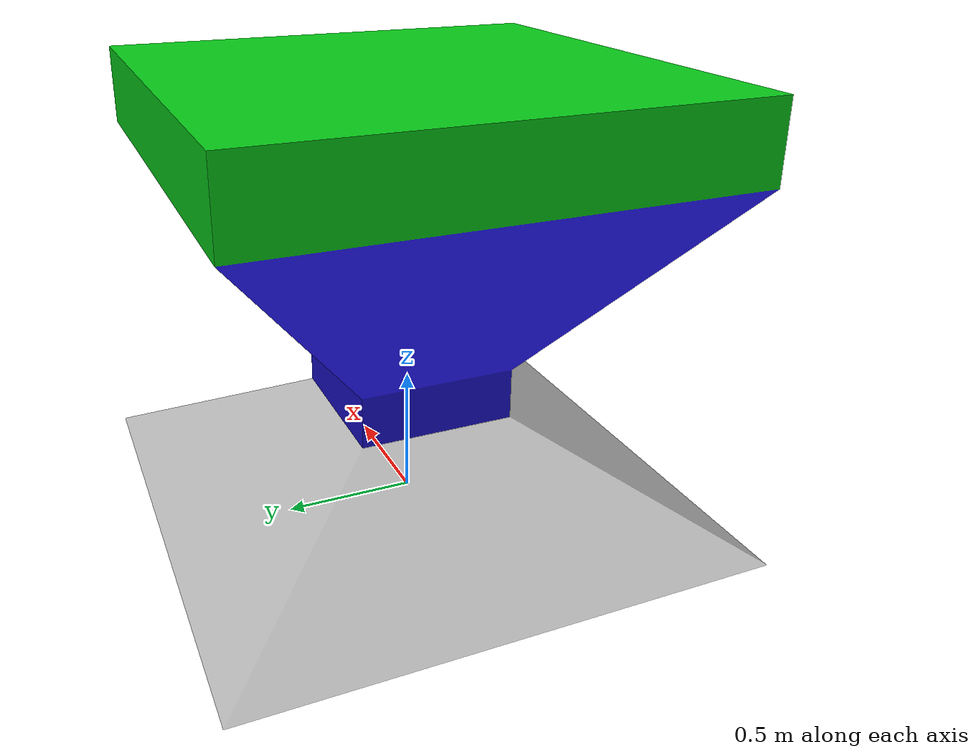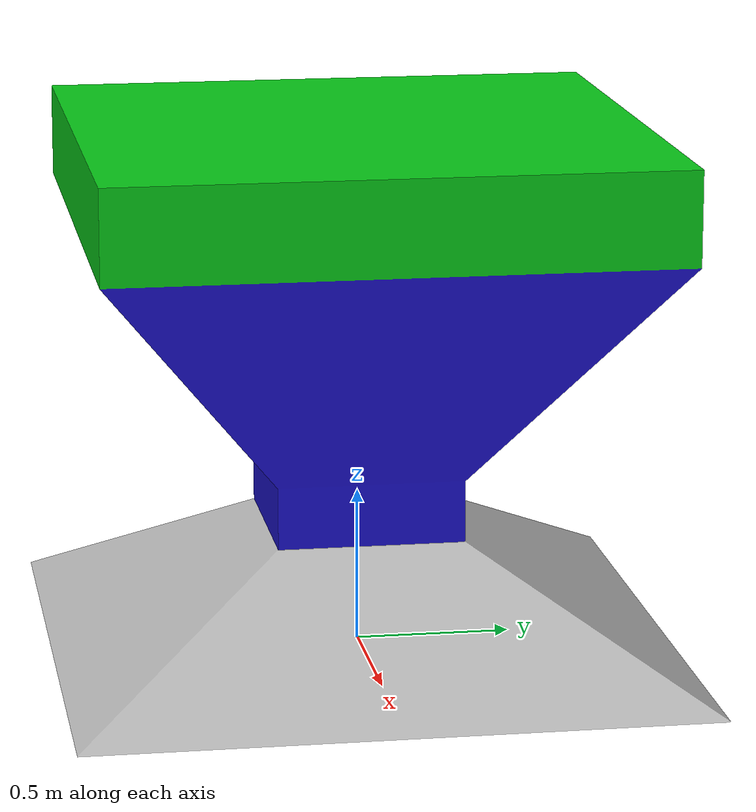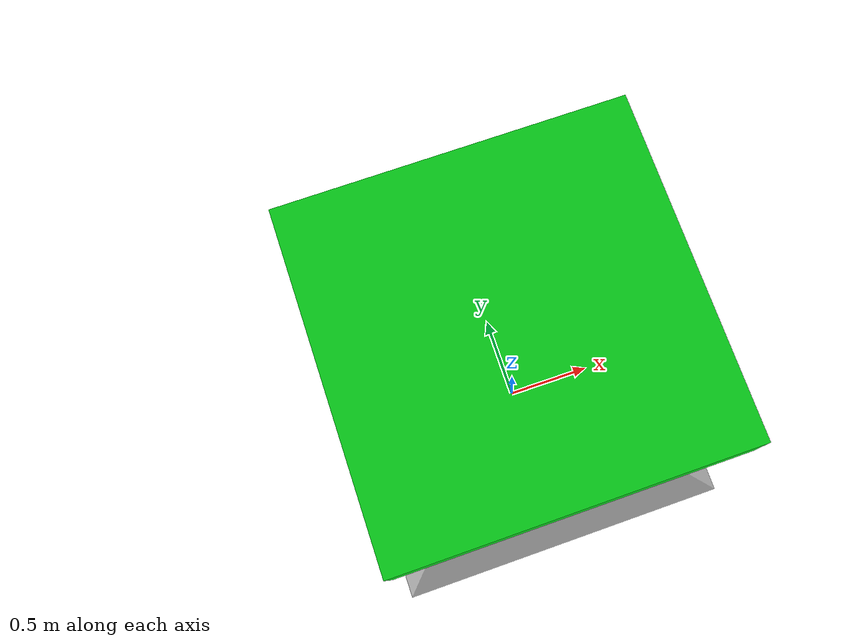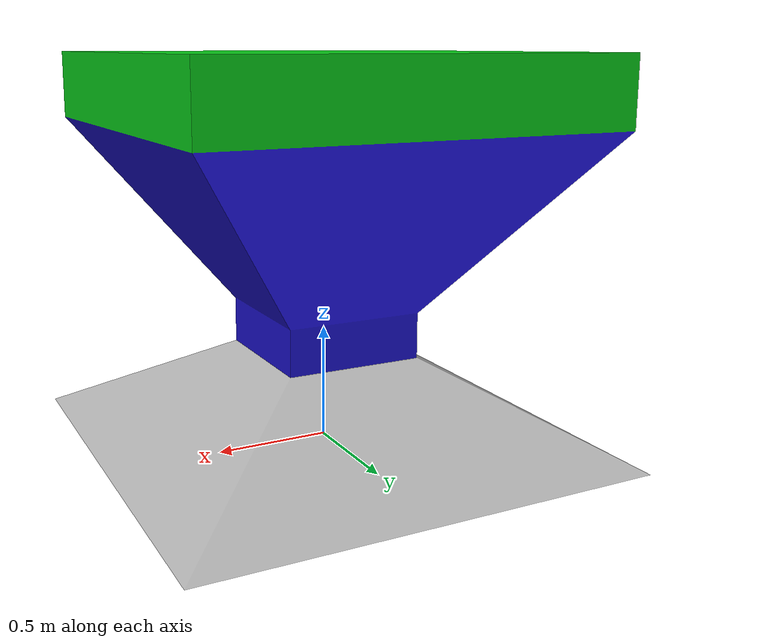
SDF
<?xml version="1.0" ?>
<sdf version="1.6">
  <model name="ebalonna">
    <static>true</static>
    <link name="link">
      <collision name="collision">
        <geometry>
          <mesh>
            <scale>1 1 1</scale>
            <uri>model://ebalonna/meshes/test1.stl</uri>
          </mesh>
           <surface>
            <friction>
              <ode>
                <mu>1.2</mu>
                <mu2>1.2</mu2>
              </ode>
            </friction>
          </surface>
        </geometry>
      </collision>
      <visual name="visual">
        <geometry>
          <mesh>
            <scale>1 1 1</scale>
            <uri>model://ebalonna/meshes/test1.dae</uri>
          </mesh>
        </geometry>
      </visual>
    </link>
  </model>
</sdf>
